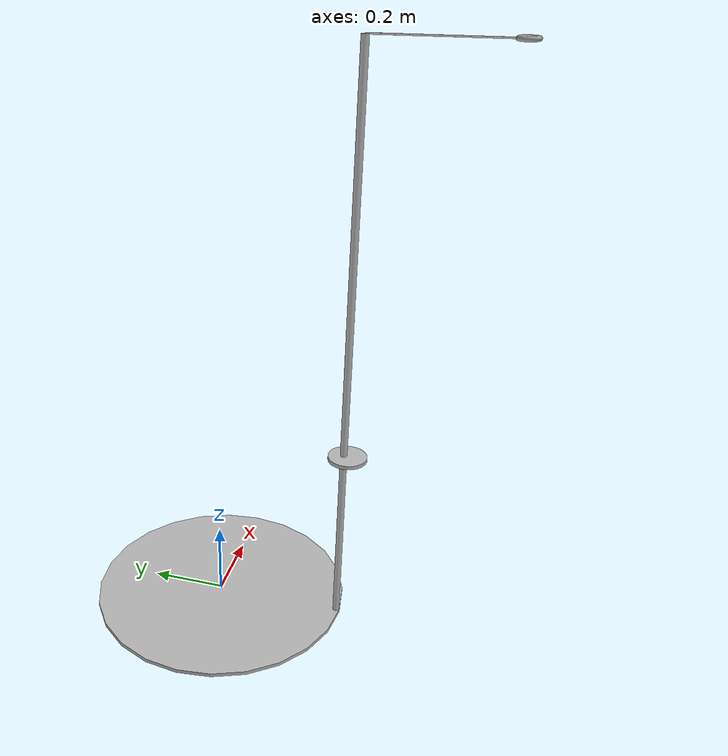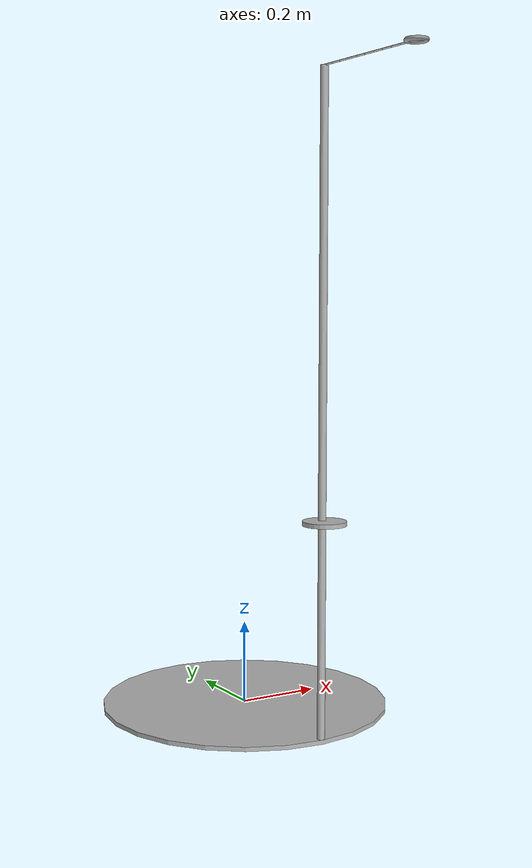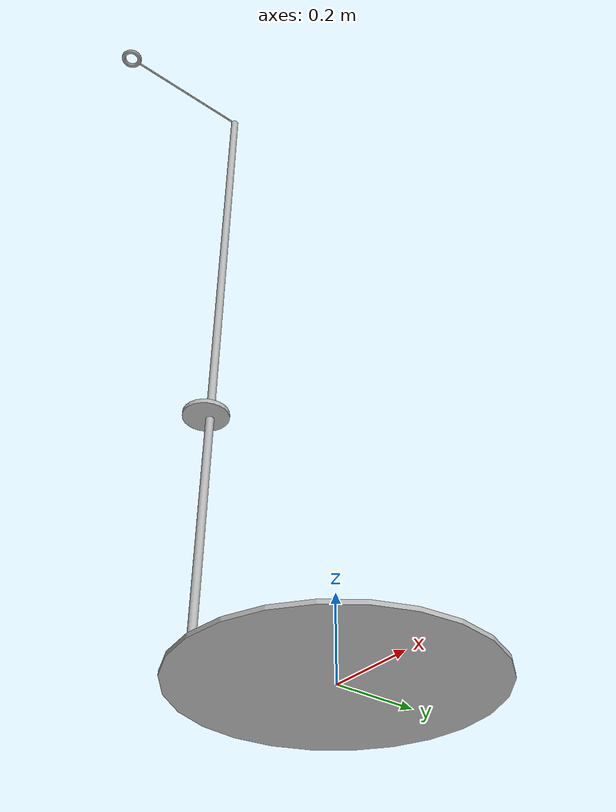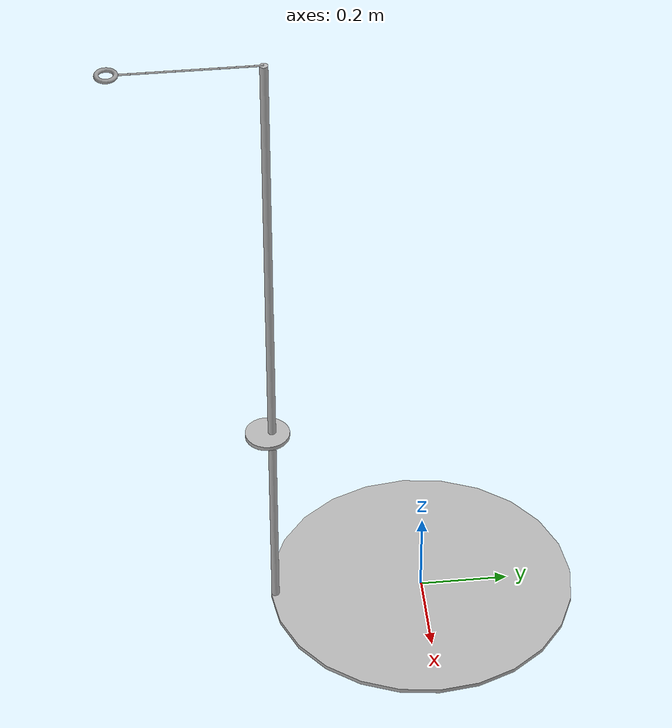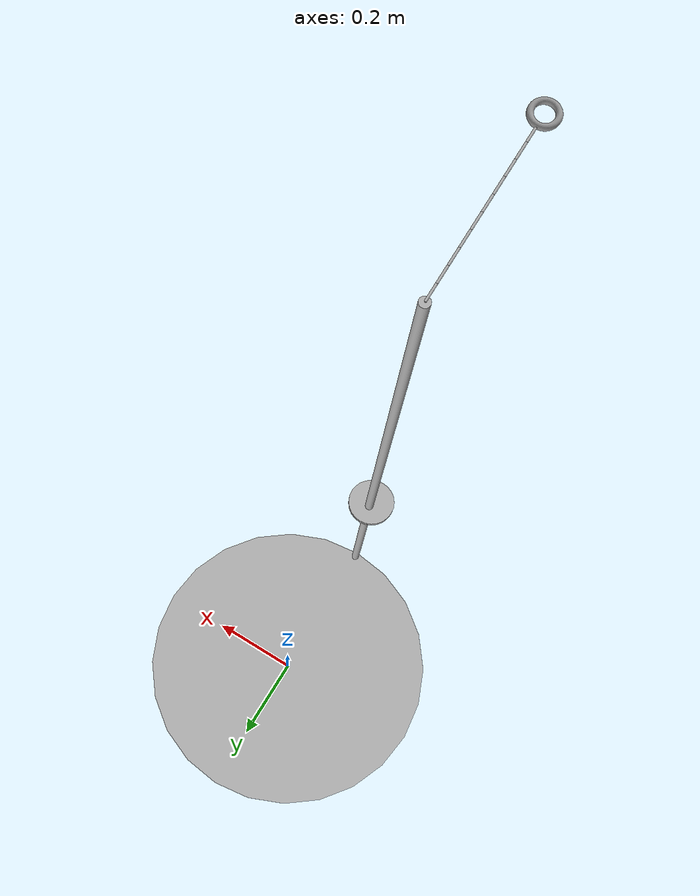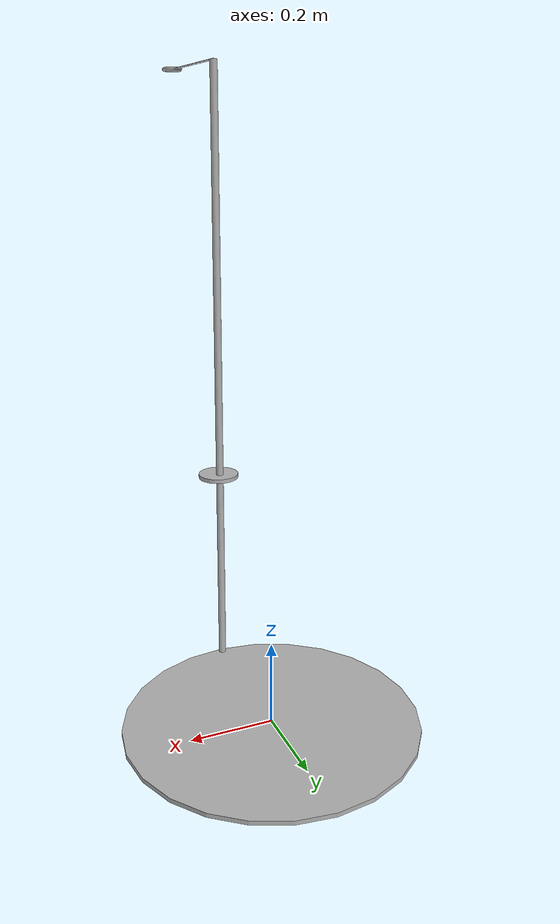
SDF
<?xml version="1.0" ?>

<sdf version="1.5">
  <model name="cable_cone">
    <link name='cone'>
      <pose>0 0 0 0 0 0</pose>
      <inertial>
        <mass>0.1</mass>
      </inertial>

      <collision name='base_collision'>
        <geometry>
          <cylinder>
            <radius>0.35</radius>
            <length>0.01</length>
          </cylinder>
        </geometry>
        <surface>
          <friction>
            <ode>
              <mu>1</mu>
              <mu2>1</mu2>
            </ode>
          </friction>
        </surface>
      </collision>

      <visual name='base_visual'>
        <geometry>
          <cylinder>
            <radius>0.35</radius>
            <length>0.01</length>
          </cylinder>
        </geometry>
      </visual>

      <collision name='rod_collision'>
        <pose>0 -0.34 0.75 0 0 0</pose>
        <geometry>
          <cylinder>
            <radius>0.009</radius>
            <length>1.5</length>
          </cylinder>
        </geometry>
      </collision>

      <visual name='rod_visual'>
        <pose>0 -0.34 0.75 0 0 0</pose>
        <geometry>
          <cylinder>
            <radius>0.009</radius>
            <length>1.5</length>
          </cylinder>
        </geometry>
      </visual>

      <sensor name="cone_imu" type="imu">
        <always_on>true</always_on>
        <update_rate>10.0</update_rate>
        <visualize>true</visualize>
        <plugin filename="libgazebo_ros_imu_sensor.so" name="imu_plugin">
          <topicName>imu</topicName>
          <bodyName>cone</bodyName>
          <updateRateHZ>5.0</updateRateHZ>
          <gaussianNoise>0.0</gaussianNoise>
          <xyzOffset>0 0 0</xyzOffset>
          <rpyOffset>0 0 0</rpyOffset>
          <frameName>cone</frameName>
        </plugin>
      </sensor>

      <sensor name="contact_sensor" type="contact">
        <always_on>true</always_on>
        <update_rate>10.0</update_rate>
        <contact>
          <collision>base_collision</collision>
        </contact>
        <plugin filename="libgazebo_ros_bumper.so" name="bumper_plugin">
          <robotNamespace>cable_cone</robotNamespace>
          <updateRateHZ>10.0</updateRateHZ>
          <bumperTopicName>bumper</bumperTopicName>
          <frameName>world</frameName>
        </plugin>
      </sensor>

    </link>

    <link name="mass">
      <pose>0 -0.35 0.5 0 0 0</pose>
      <inertial>
        <mass>1</mass>
      </inertial>

      <collision name='mass_collision'>
        <geometry>
          <cylinder>
            <radius>0.05</radius>
            <length>0.01</length>
          </cylinder>
        </geometry>
      </collision>

      <visual name='mass_visual'>
        <geometry>
          <cylinder>
            <radius>0.05</radius>
            <length>0.01</length>
          </cylinder>
        </geometry>
      </visual>

    </link>

    <joint type="fixed" name="mass_joint">
      <parent>cone</parent>
      <child>mass</child>
    </joint>

    <link name="link0">
      <pose> 0 -0.35500000000000004 1.5 1.57075 0 0</pose>
      <inertial>
        <mass> 0.001 </mass>
        <inertia>
          <ixx>7.599999999999999e-08</ixx>
          <ixy>0.0</ixy>
          <ixz>0.0</ixz>
          <iyy>7.599999999999999e-08</iyy>
          <iyz>0.0</iyz>
          <izz>2.0e-09</izz>
        </inertia>
      </inertial>

      <collision name='link0_collision'>
        <geometry>
          <cylinder>
            <radius>0.002</radius>
            <length>0.03</length>
          </cylinder>
        </geometry>
      </collision>

      <visual name='link0_collision'>
        <geometry>
          <cylinder>
            <radius>0.002</radius>
            <length>0.03</length>
          </cylinder>
        </geometry>
      </visual>
    </link>

    <joint name="joint0" type="universal">
      <pose>0 0 -0.015 0 0 0</pose>
      <parent>cone</parent>
      <child>link0</child>
    </joint>

    <link name="link1">
      <pose> 0 -0.385 1.5 1.57075 0 0</pose>
      <inertial>
        <mass> 0.001 </mass>
        <inertia>
          <ixx>7.599999999999999e-08</ixx>
          <ixy>0.0</ixy>
          <ixz>0.0</ixz>
          <iyy>7.599999999999999e-08</iyy>
          <iyz>0.0</iyz>
          <izz>2.0e-09</izz>
        </inertia>
      </inertial>

      <collision name='link1_collision'>
        <geometry>
          <cylinder>
            <radius>0.002</radius>
            <length>0.03</length>
          </cylinder>
        </geometry>
      </collision>

      <visual name='link1_collision'>
        <geometry>
          <cylinder>
            <radius>0.002</radius>
            <length>0.03</length>
          </cylinder>
        </geometry>
      </visual>
    </link>

    <joint name="joint1" type="universal">
      <pose>0 0 -0.015 0 0 0</pose>
      <parent>link0</parent>
      <child>link1</child>
    </joint>

    <link name="link2">
      <pose> 0 -0.41500000000000004 1.5 1.57075 0 0</pose>
      <inertial>
        <mass> 0.001 </mass>
        <inertia>
          <ixx>7.599999999999999e-08</ixx>
          <ixy>0.0</ixy>
          <ixz>0.0</ixz>
          <iyy>7.599999999999999e-08</iyy>
          <iyz>0.0</iyz>
          <izz>2.0e-09</izz>
        </inertia>
      </inertial>

      <collision name='link2_collision'>
        <geometry>
          <cylinder>
            <radius>0.002</radius>
            <length>0.03</length>
          </cylinder>
        </geometry>
      </collision>

      <visual name='link2_collision'>
        <geometry>
          <cylinder>
            <radius>0.002</radius>
            <length>0.03</length>
          </cylinder>
        </geometry>
      </visual>
    </link>

    <joint name="joint2" type="universal">
      <pose>0 0 -0.015 0 0 0</pose>
      <parent>link1</parent>
      <child>link2</child>
    </joint>

    <link name="link3">
      <pose> 0 -0.44500000000000006 1.5 1.57075 0 0</pose>
      <inertial>
        <mass> 0.001 </mass>
        <inertia>
          <ixx>7.599999999999999e-08</ixx>
          <ixy>0.0</ixy>
          <ixz>0.0</ixz>
          <iyy>7.599999999999999e-08</iyy>
          <iyz>0.0</iyz>
          <izz>2.0e-09</izz>
        </inertia>
      </inertial>

      <collision name='link3_collision'>
        <geometry>
          <cylinder>
            <radius>0.002</radius>
            <length>0.03</length>
          </cylinder>
        </geometry>
      </collision>

      <visual name='link3_collision'>
        <geometry>
          <cylinder>
            <radius>0.002</radius>
            <length>0.03</length>
          </cylinder>
        </geometry>
      </visual>
    </link>

    <joint name="joint3" type="universal">
      <pose>0 0 -0.015 0 0 0</pose>
      <parent>link2</parent>
      <child>link3</child>
    </joint>

    <link name="link4">
      <pose> 0 -0.47500000000000003 1.5 1.57075 0 0</pose>
      <inertial>
        <mass> 0.001 </mass>
        <inertia>
          <ixx>7.599999999999999e-08</ixx>
          <ixy>0.0</ixy>
          <ixz>0.0</ixz>
          <iyy>7.599999999999999e-08</iyy>
          <iyz>0.0</iyz>
          <izz>2.0e-09</izz>
        </inertia>
      </inertial>

      <collision name='link4_collision'>
        <geometry>
          <cylinder>
            <radius>0.002</radius>
            <length>0.03</length>
          </cylinder>
        </geometry>
      </collision>

      <visual name='link4_collision'>
        <geometry>
          <cylinder>
            <radius>0.002</radius>
            <length>0.03</length>
          </cylinder>
        </geometry>
      </visual>
    </link>

    <joint name="joint4" type="universal">
      <pose>0 0 -0.015 0 0 0</pose>
      <parent>link3</parent>
      <child>link4</child>
    </joint>

    <link name="link5">
      <pose> 0 -0.505 1.5 1.57075 0 0</pose>
      <inertial>
        <mass> 0.001 </mass>
        <inertia>
          <ixx>7.599999999999999e-08</ixx>
          <ixy>0.0</ixy>
          <ixz>0.0</ixz>
          <iyy>7.599999999999999e-08</iyy>
          <iyz>0.0</iyz>
          <izz>2.0e-09</izz>
        </inertia>
      </inertial>

      <collision name='link5_collision'>
        <geometry>
          <cylinder>
            <radius>0.002</radius>
            <length>0.03</length>
          </cylinder>
        </geometry>
      </collision>

      <visual name='link5_collision'>
        <geometry>
          <cylinder>
            <radius>0.002</radius>
            <length>0.03</length>
          </cylinder>
        </geometry>
      </visual>
    </link>

    <joint name="joint5" type="universal">
      <pose>0 0 -0.015 0 0 0</pose>
      <parent>link4</parent>
      <child>link5</child>
    </joint>

    <link name="link6">
      <pose> 0 -0.535 1.5 1.57075 0 0</pose>
      <inertial>
        <mass> 0.001 </mass>
        <inertia>
          <ixx>7.599999999999999e-08</ixx>
          <ixy>0.0</ixy>
          <ixz>0.0</ixz>
          <iyy>7.599999999999999e-08</iyy>
          <iyz>0.0</iyz>
          <izz>2.0e-09</izz>
        </inertia>
      </inertial>

      <collision name='link6_collision'>
        <geometry>
          <cylinder>
            <radius>0.002</radius>
            <length>0.03</length>
          </cylinder>
        </geometry>
      </collision>

      <visual name='link6_collision'>
        <geometry>
          <cylinder>
            <radius>0.002</radius>
            <length>0.03</length>
          </cylinder>
        </geometry>
      </visual>
    </link>

    <joint name="joint6" type="universal">
      <pose>0 0 -0.015 0 0 0</pose>
      <parent>link5</parent>
      <child>link6</child>
    </joint>

    <link name="link7">
      <pose> 0 -0.5650000000000001 1.5 1.57075 0 0</pose>
      <inertial>
        <mass> 0.001 </mass>
        <inertia>
          <ixx>7.599999999999999e-08</ixx>
          <ixy>0.0</ixy>
          <ixz>0.0</ixz>
          <iyy>7.599999999999999e-08</iyy>
          <iyz>0.0</iyz>
          <izz>2.0e-09</izz>
        </inertia>
      </inertial>

      <collision name='link7_collision'>
        <geometry>
          <cylinder>
            <radius>0.002</radius>
            <length>0.03</length>
          </cylinder>
        </geometry>
      </collision>

      <visual name='link7_collision'>
        <geometry>
          <cylinder>
            <radius>0.002</radius>
            <length>0.03</length>
          </cylinder>
        </geometry>
      </visual>
    </link>

    <joint name="joint7" type="universal">
      <pose>0 0 -0.015 0 0 0</pose>
      <parent>link6</parent>
      <child>link7</child>
    </joint>

    <link name="link8">
      <pose> 0 -0.595 1.5 1.57075 0 0</pose>
      <inertial>
        <mass> 0.001 </mass>
        <inertia>
          <ixx>7.599999999999999e-08</ixx>
          <ixy>0.0</ixy>
          <ixz>0.0</ixz>
          <iyy>7.599999999999999e-08</iyy>
          <iyz>0.0</iyz>
          <izz>2.0e-09</izz>
        </inertia>
      </inertial>

      <collision name='link8_collision'>
        <geometry>
          <cylinder>
            <radius>0.002</radius>
            <length>0.03</length>
          </cylinder>
        </geometry>
      </collision>

      <visual name='link8_collision'>
        <geometry>
          <cylinder>
            <radius>0.002</radius>
            <length>0.03</length>
          </cylinder>
        </geometry>
      </visual>
    </link>

    <joint name="joint8" type="universal">
      <pose>0 0 -0.015 0 0 0</pose>
      <parent>link7</parent>
      <child>link8</child>
    </joint>

    <link name="link9">
      <pose> 0 -0.625 1.5 1.57075 0 0</pose>
      <inertial>
        <mass> 0.001 </mass>
        <inertia>
          <ixx>7.599999999999999e-08</ixx>
          <ixy>0.0</ixy>
          <ixz>0.0</ixz>
          <iyy>7.599999999999999e-08</iyy>
          <iyz>0.0</iyz>
          <izz>2.0e-09</izz>
        </inertia>
      </inertial>

      <collision name='link9_collision'>
        <geometry>
          <cylinder>
            <radius>0.002</radius>
            <length>0.03</length>
          </cylinder>
        </geometry>
      </collision>

      <visual name='link9_collision'>
        <geometry>
          <cylinder>
            <radius>0.002</radius>
            <length>0.03</length>
          </cylinder>
        </geometry>
      </visual>
    </link>

    <joint name="joint9" type="universal">
      <pose>0 0 -0.015 0 0 0</pose>
      <parent>link8</parent>
      <child>link9</child>
    </joint>

    <link name="ring">
      <pose>0 -0.66 1.5 0 0 0</pose>
      <inertial>
        <mass>0.005</mass>
         <inertia>
          <ixx>1.0000000000000002e-06</ixx>
          <ixy>0.0</ixy>
          <ixz>0.0</ixz>
          <iyy>1.0000000000000002e-06</iyy>
          <iyz>0.0</iyz>
          <izz>2.0000000000000003e-06</izz>
        </inertia>
      </inertial>

      <collision name="ring_collision">
        <geometry>
          <mesh>
            <uri>model://cable_cone/meshes/ring.stl</uri>
          </mesh>
        </geometry>
      </collision>

      <visual name="ring_visual">
        <geometry>
          <mesh>
            <uri>model://cable_cone/meshes/ring.dae</uri>
          </mesh>
        </geometry>
      </visual>
    </link>

    <joint name="ring_joint" type="universal">
      <pose>0 0.02 0 0 0 0</pose>
      <parent>link9</parent>
      <child>ring</child>
    </joint>

  </model>
</sdf>
